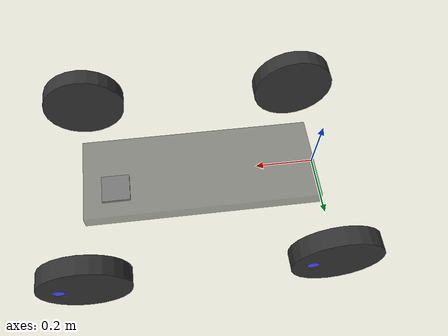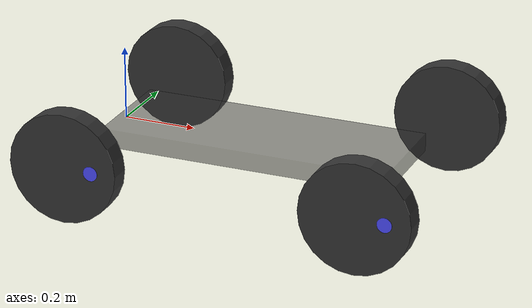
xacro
<?xml version="1.0"?>
<robot name="ackermann_base" xmlns:xacro="http://ros.org/wiki/xacro">
  <xacro:include filename="$(find arti_base_control_examples)/urdf/wheel.urdf.xacro"/>

  <!-- Main Links -->

  <link name="base_link"/>

  <link name="base_footprint"/>

  <joint name="base_link_to_base_footprint" type="fixed">
    <parent link="base_link"/>
    <child link="base_footprint"/>
    <origin xyz="0 0 -0.15"/>
  </joint>

  <!-- Body -->

  <link name="body">
    <visual>
      <geometry>
        <box size="0.8 0.3 0.05"/>
      </geometry>
      <material name="translucent_dark_gray">
        <color rgba="0.2 0.2 0.2 0.5"/>
      </material>
    </visual>
  </link>

  <joint name="body_joint" type="fixed">
    <parent link="base_link"/>
    <child link="body"/>
    <origin xyz="0.4 0.0 0.0"/>
  </joint>

  <!-- Steering -->

  <link name="steering_shaft">
    <visual>
      <geometry>
        <box size="0.1 0.1 0.01"/>
      </geometry>
      <material name="light_gray">
        <color rgba="0.8 0.8 0.8 1.0"/>
      </material>
    </visual>
  </link>

  <joint name="steering_shaft_joint" type="revolute">
    <parent link="base_link"/>
    <child link="steering_shaft"/>
    <origin xyz="0.7 0.0 -0.06"/>
    <axis xyz="0 0 1"/>
    <limit lower="-1.57075" upper="1.57075" effort="100" velocity="3.14159"/>
  </joint>

  <!-- Wheels -->

  <link name="front_left_hinge"/>
  <link name="front_right_hinge"/>

  <joint name="front_left_hinge_joint" type="revolute">
    <parent link="base_link"/>
    <child link="front_left_hinge"/>
    <origin xyz="0.8 0.3 0.0"/>
    <axis xyz="0 0 1"/>
    <limit lower="-1.57075" upper="1.57075" effort="100" velocity="3.14159"/>
  </joint>

  <joint name="front_right_hinge_joint" type="revolute">
    <parent link="base_link"/>
    <child link="front_right_hinge"/>
    <origin xyz="0.8 -0.3 0.0"/>
    <axis xyz="0 0 1"/>
    <limit lower="-1.57075" upper="1.57075" effort="100" velocity="3.14159"/>
  </joint>

  <xacro:wheel name="front_left_wheel"/>
  <xacro:wheel name="front_right_wheel"/>
  <xacro:wheel name="rear_left_wheel"/>
  <xacro:wheel name="rear_right_wheel"/>

  <joint name="front_left_wheel_joint" type="continuous">
    <parent link="front_left_hinge"/>
    <child link="front_left_wheel"/>
    <origin rpy="-1.57075 0 0" xyz="0.0 0.05 0.0"/>
    <axis xyz="0 0 1"/>
  </joint>

  <joint name="front_right_wheel_joint" type="continuous">
    <parent link="front_right_hinge"/>
    <child link="front_right_wheel"/>
    <origin rpy="1.57075 0 0" xyz="0.0 -0.05 0.0"/>
    <axis xyz="0 0 -1"/>
  </joint>

  <joint name="rear_left_wheel_joint" type="continuous">
    <parent link="base_link"/>
    <child link="rear_left_wheel"/>
    <origin rpy="-1.57075 0 0" xyz="0.0 0.35 0.0"/>
    <axis xyz="0 0 1"/>
  </joint>

  <joint name="rear_right_wheel_joint" type="continuous">
    <parent link="base_link"/>
    <child link="rear_right_wheel"/>
    <origin rpy="1.57075 0 0" xyz="0.0 -0.35 0.0"/>
    <axis xyz="0 0 -1"/>
  </joint>
</robot>

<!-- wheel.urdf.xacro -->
<robot xmlns:xacro="http://ros.org/wiki/xacro">
  <xacro:macro name="wheel" params="name">
    <link name="${name}">
      <visual>
        <geometry>
          <cylinder length="0.06" radius="0.15"/>
	      </geometry>
        <material name="dark_gray">
          <color rgba="0.2 0.2 0.2 1.0"/>
        </material>
      </visual>
      <visual>
        <origin xyz="0.08 0 0.03"/>
        <geometry>
          <cylinder length="0.001" radius="0.02"/>
        </geometry>
        <material name="light_blue">
          <color rgba="0.3 0.3 1.0 1.0"/>
        </material>
      </visual>
    </link>
  </xacro:macro>
</robot>
